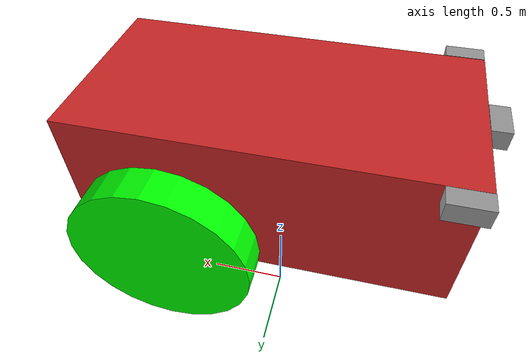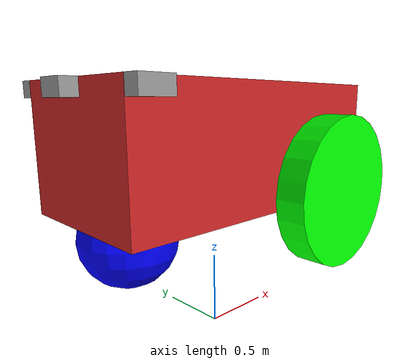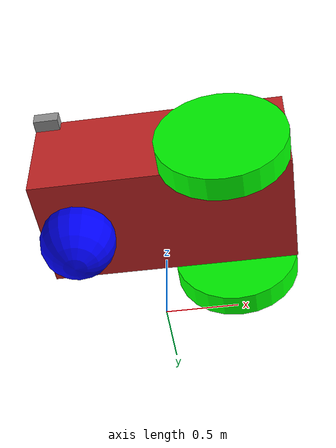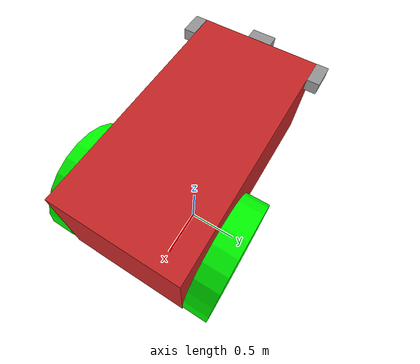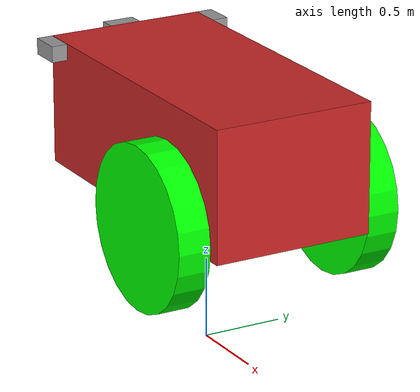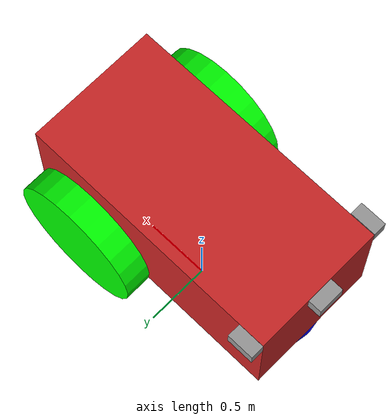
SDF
<?xml version='1.0'?>
<sdf version='1.6'>
  <model name='my_2wheel_bot'>
<!--Creating chassis for bot-->
    <link name='link_chassis'>
      <pose frame=''>0 0 1 0 -0 0</pose>
      <inertial>
        <mass>1</mass>
        <inertia>
          <ixx>0.166667</ixx>
          <ixy>0</ixy>
          <ixz>0</ixz>
          <iyy>0.166667</iyy>
          <iyz>0</iyz>
          <izz>0.166667</izz>
        </inertia>
        <pose frame=''>0 0 0 0 -0 0</pose>
      </inertial>
      <self_collide>0</self_collide>
      <kinematic>0</kinematic>
      <visual name='visual_chassis'>
        <geometry>
          <box>
            <size>2 1 0.8</size>
          </box>
        </geometry>
        <material>
          <script>
            <name>Gazebo/Red</name>
            <uri>file://media/materials/scripts/gazebo.material</uri>
          </script>
          <shader type='pixel'>
            <normal_map>__default__</normal_map>
          </shader>
          <ambient>1 0 0 1</ambient>
          <diffuse>1 0 0 1</diffuse>
          <specular>0.01 0.01 0.01 1</specular>
          <emissive>0 0 0 1</emissive>
        </material>
        <pose frame=''>0 0 0.3 0 -0 0</pose>
        <transparency>0</transparency>
        <cast_shadows>1</cast_shadows>
      </visual>
      <collision name='collision_chassis'>
        <laser_retro>0</laser_retro>
        <max_contacts>10</max_contacts>
        <pose frame=''>0 0 0.3 0 -0 0</pose>
        <geometry>
          <box>
            <size>2 1 0.8</size>
          </box>
        </geometry>
        <surface>
          <friction>
            <ode>
              <mu>1</mu>
              <mu2>1</mu2>
              <fdir1>0 0 0</fdir1>
              <slip1>0</slip1>
              <slip2>0</slip2>
            </ode>
            <torsional>
              <coefficient>1</coefficient>
              <patch_radius>0</patch_radius>
              <surface_radius>0</surface_radius>
              <use_patch_radius>1</use_patch_radius>
              <ode>
                <slip>0</slip>
              </ode>
            </torsional>
          </friction>
          <bounce>
            <restitution_coefficient>0</restitution_coefficient>
            <threshold>1e+06</threshold>
          </bounce>
          <contact>
            <collide_without_contact>0</collide_without_contact>
            <collide_without_contact_bitmask>1</collide_without_contact_bitmask>
            <collide_bitmask>1</collide_bitmask>
            <ode>
              <soft_cfm>0</soft_cfm>
              <soft_erp>0.2</soft_erp>
              <kp>1e+13</kp>
              <kd>1</kd>
              <max_vel>0.01</max_vel>
              <min_depth>0</min_depth>
            </ode>
            <bullet>
              <split_impulse>1</split_impulse>
              <split_impulse_penetration_threshold>-0.01</split_impulse_penetration_threshold>
              <soft_cfm>0</soft_cfm>
              <soft_erp>0.2</soft_erp>
              <kp>1e+13</kp>
              <kd>1</kd>
            </bullet>
          </contact>
        </surface>
      </collision>
<!--Adding castor wheel-->
      <visual name='visual_caster'>
        <pose frame=''>-0.7 0 -0.2 0 -0 0</pose>
        <geometry>
          <sphere>
            <radius>0.3</radius>
          </sphere>
        </geometry>
        <material>
          <lighting>1</lighting>
          <script>
            <uri>file://media/materials/scripts/gazebo.material</uri>
            <name>Gazebo/Grey</name>
          </script>
          <shader type='pixel'>
            <normal_map>__default__</normal_map>
          </shader>
          <ambient>0 0 1 1</ambient>
          <diffuse>0 0 1 1</diffuse>
          <specular>0.01 0.01 0.01 1</specular>
          <emissive>0 0 0 1</emissive>
        </material>
        <transparency>0</transparency>
        <cast_shadows>1</cast_shadows>
      </visual>
      <collision name='collision_caster'>
        <laser_retro>0</laser_retro>
        <max_contacts>10</max_contacts>
        <pose frame=''>-0.7 0 -0.2 0 -0 0</pose>
        <geometry>
          <sphere>
            <radius>0.3</radius>
          </sphere>
        </geometry>
        <surface>
          <friction>
            <ode>
              <mu>0</mu>
              <mu2>0</mu2>
              <fdir1>0 0 0</fdir1>
              <slip1>1</slip1>
              <slip2>1</slip2>
            </ode>
            <torsional>
              <coefficient>1</coefficient>
              <patch_radius>0</patch_radius>
              <surface_radius>0</surface_radius>
              <use_patch_radius>1</use_patch_radius>
              <ode>
                <slip>0</slip>
              </ode>
            </torsional>
          </friction>
          <bounce>
            <restitution_coefficient>0</restitution_coefficient>
            <threshold>1e+06</threshold>
          </bounce>
          <contact>
            <collide_without_contact>0</collide_without_contact>
            <collide_without_contact_bitmask>1</collide_without_contact_bitmask>
            <collide_bitmask>1</collide_bitmask>
            <ode>
              <soft_cfm>0</soft_cfm>
              <soft_erp>0.2</soft_erp>
              <kp>1e+13</kp>
              <kd>1</kd>
              <max_vel>0.01</max_vel>
              <min_depth>0</min_depth>
            </ode>
            <bullet>
              <split_impulse>1</split_impulse>
              <split_impulse_penetration_threshold>-0.01</split_impulse_penetration_threshold>
              <soft_cfm>0</soft_cfm>
              <soft_erp>0.2</soft_erp>
              <kp>1e+13</kp>
              <kd>1</kd>
            </bullet>
          </contact>
        </surface>
      </collision>
    </link>

<!--Adding right wheel-->
    <link name='link_rwheel'>
      <pose frame=''>0.5 0.600398 1 0 -0 0</pose>
      <inertial>
        <mass>1</mass>
        <inertia>
          <ixx>0.145833</ixx>
          <ixy>0</ixy>
          <ixz>0</ixz>
          <iyy>0.145833</iyy>
          <iyz>0</iyz>
          <izz>0.125</izz>
        </inertia>
        <pose frame=''>0 0 0 0 -0 0</pose>
      </inertial>
      <self_collide>0</self_collide>
      <kinematic>0</kinematic>
      <visual name='visual_rwheel'>
        <pose frame=''>0 0 0 1.57 -0 0</pose>
        <geometry>
          <cylinder>
            <radius>0.5</radius>
            <length>0.2</length>
          </cylinder>
        </geometry>
        <material>
          <lighting>1</lighting>
          <script>
            <uri>file://media/materials/scripts/gazebo.material</uri>
            <name>Gazebo/Grey</name>
          </script>
          <shader type='pixel'>
            <normal_map>__default__</normal_map>
          </shader>
          <ambient>0 1 0 1</ambient>
          <diffuse>0 1 0 1</diffuse>
          <specular>0.01 0.01 0.01 1</specular>
          <emissive>0 0 0 1</emissive>
        </material>
        <transparency>0</transparency>
        <cast_shadows>1</cast_shadows>
      </visual>
      <collision name='collision_rwheel'>
        <laser_retro>0</laser_retro>
        <max_contacts>10</max_contacts>
        <pose frame=''>0 0 0 1.57 -0 0</pose>
        <geometry>
          <cylinder>
            <radius>0.5</radius>
            <length>0.2</length>
          </cylinder>
        </geometry>
        <surface>
          <friction>
            <ode>
              <mu>1</mu>
              <mu2>1</mu2>
              <fdir1>0 0 0</fdir1>
              <slip1>0</slip1>
              <slip2>0</slip2>
            </ode>
            <torsional>
              <coefficient>1</coefficient>
              <patch_radius>0</patch_radius>
              <surface_radius>0</surface_radius>
              <use_patch_radius>1</use_patch_radius>
              <ode>
                <slip>0</slip>
              </ode>
            </torsional>
          </friction>
          <bounce>
            <restitution_coefficient>0</restitution_coefficient>
            <threshold>1e+06</threshold>
          </bounce>
          <contact>
            <collide_without_contact>0</collide_without_contact>
            <collide_without_contact_bitmask>1</collide_without_contact_bitmask>
            <collide_bitmask>1</collide_bitmask>
            <ode>
              <soft_cfm>0</soft_cfm>
              <soft_erp>0.2</soft_erp>
              <kp>1e+13</kp>
              <kd>1</kd>
              <max_vel>0.01</max_vel>
              <min_depth>0</min_depth>
            </ode>
            <bullet>
              <split_impulse>1</split_impulse>
              <split_impulse_penetration_threshold>-0.01</split_impulse_penetration_threshold>
              <soft_cfm>0</soft_cfm>
              <soft_erp>0.2</soft_erp>
              <kp>1e+13</kp>
              <kd>1</kd>
            </bullet>
          </contact>
        </surface>
      </collision>
    </link>

<!--Adding laser sensor at front-->
    <link name='sensor_front'>
      <pose frame=''>-1.05107 -0.001866 1.650131 0 -0 0</pose>
      <inertial>
        <mass>1</mass>
        <inertia>
          <ixx>0.166667</ixx>
          <ixy>0</ixy>
          <ixz>0</ixz>
          <iyy>0.166667</iyy>
          <iyz>0</iyz>
          <izz>0.166667</izz>
        </inertia>
        <pose frame=''>0 0 0 0 -0 0</pose>
      </inertial>
      <self_collide>0</self_collide>
      <kinematic>0</kinematic>
      <visual name='visual_sensor_front'>
        <pose frame=''>0 0 0 0 -0 0</pose>
        <geometry>
          <box>
            <size>0.1 0.2 0.1</size>
          </box>
        </geometry>
        <material>
          <lighting>1</lighting>
          <script>
            <uri>file://media/materials/scripts/gazebo.material</uri>
            <name>Gazebo/Grey</name>
          </script>
          <shader type='pixel'>
            <normal_map>__default__</normal_map>
          </shader>
          <ambient>0.3 0.3 0.3 1</ambient>
          <diffuse>0.7 0.7 0.7 1</diffuse>
          <specular>0.01 0.01 0.01 1</specular>
          <emissive>0 0 0 1</emissive>
        </material>
        <transparency>0</transparency>
        <cast_shadows>1</cast_shadows>
      </visual>
      <collision name='collision_sensor_front'>
        <laser_retro>0</laser_retro>
        <max_contacts>10</max_contacts>
        <pose frame=''>0 0 0 0 -0 0</pose>
        <geometry>
          <box>
            <size>0.1 0.2 0.1</size>
          </box>
        </geometry>
        <surface>
          <friction>
            <ode>
              <mu>1</mu>
              <mu2>1</mu2>
              <fdir1>0 0 0</fdir1>
              <slip1>0</slip1>
              <slip2>0</slip2>
            </ode>
            <torsional>
              <coefficient>1</coefficient>
              <patch_radius>0</patch_radius>
              <surface_radius>0</surface_radius>
              <use_patch_radius>1</use_patch_radius>
              <ode>
                <slip>0</slip>
              </ode>
            </torsional>
          </friction>
          <bounce>
            <restitution_coefficient>0</restitution_coefficient>
            <threshold>1e+06</threshold>
          </bounce>
          <contact>
            <collide_without_contact>0</collide_without_contact>
            <collide_without_contact_bitmask>1</collide_without_contact_bitmask>
            <collide_bitmask>1</collide_bitmask>
            <ode>
              <soft_cfm>0</soft_cfm>
              <soft_erp>0.2</soft_erp>
              <kp>1e+13</kp>
              <kd>1</kd>
              <max_vel>0.01</max_vel>
              <min_depth>0</min_depth>
            </ode>
            <bullet>
              <split_impulse>1</split_impulse>
              <split_impulse_penetration_threshold>-0.01</split_impulse_penetration_threshold>
              <soft_cfm>0</soft_cfm>
              <soft_erp>0.2</soft_erp>
              <kp>1e+13</kp>
              <kd>1</kd>
            </bullet>
          </contact>
        </surface>
      </collision>
<!--Adding sensor behaviour-->
      <sensor name='sensor_front' type='ray'>
        <pose frame=''>-0.1 0 0 0 0 3.14</pose>
        <visualize>1</visualize>
        <update_rate>30</update_rate>
        <ray>
          <scan>
            <horizontal>
              <samples>32</samples>
              <resolution>1</resolution>
              <min_angle>-0.5236</min_angle>
              <max_angle>0.5236</max_angle>
            </horizontal>
            <vertical>
              <samples>1</samples>
              <min_angle>0</min_angle>
              <max_angle>0</max_angle>
            </vertical>
          </scan>
          <range>
            <min>0.05</min>
            <max>70</max>
            <resolution>0.02</resolution>
          </range>
        </ray>
<!-- Attach the plugin to this model -->
        <plugin name="sensor_front_control" filename="libgazebo_ros_laser.so">
          <topicName>/sensor_front/laser/scan</topicName>
          <frameName>sensor_front</frameName>
        </plugin>
      </sensor>
    </link>

<!--Adding laser sensor at left-->
    <link name='sensor_left'>
      <pose frame=''>-0.899868 -0.553453 1.65019 0 -0 0</pose>
      <inertial>
        <mass>1</mass>
        <inertia>
          <ixx>0.166667</ixx>
          <ixy>0</ixy>
          <ixz>0</ixz>
          <iyy>0.166667</iyy>
          <iyz>0</iyz>
          <izz>0.166667</izz>
        </inertia>
        <pose frame=''>0 0 0 0 -0 0</pose>
      </inertial>
      <self_collide>0</self_collide>
      <kinematic>0</kinematic>
      <gravity>1</gravity>
      <visual name='visual_sensor_left'>
        <pose frame=''>0 0 0 0 -0 1.57</pose>
        <geometry>
          <box>
            <size>0.1 0.2 0.1</size>
          </box>
        </geometry>
        <material>
          <lighting>1</lighting>
          <script>
            <uri>file://media/materials/scripts/gazebo.material</uri>
            <name>Gazebo/Grey</name>
          </script>
          <shader type='pixel'>
            <normal_map>__default__</normal_map>
          </shader>
          <ambient>0.3 0.3 0.3 1</ambient>
          <diffuse>0.7 0.7 0.7 1</diffuse>
          <specular>0.01 0.01 0.01 1</specular>
          <emissive>0 0 0 1</emissive>
        </material>
        <transparency>0</transparency>
        <cast_shadows>1</cast_shadows>
      </visual>
      <collision name='collision_sensor_left'>
        <laser_retro>0</laser_retro>
        <max_contacts>10</max_contacts>
        <pose frame=''>0 0 0 0 -0 1.57</pose>
        <geometry>
          <box>
            <size>0.1 0.2 0.1</size>
          </box>
        </geometry>
        <surface>
          <friction>
            <ode>
              <mu>1</mu>
              <mu2>1</mu2>
              <fdir1>0 0 0</fdir1>
              <slip1>0</slip1>
              <slip2>0</slip2>
            </ode>
            <torsional>
              <coefficient>1</coefficient>
              <patch_radius>0</patch_radius>
              <surface_radius>0</surface_radius>
              <use_patch_radius>1</use_patch_radius>
              <ode>
                <slip>0</slip>
              </ode>
            </torsional>
          </friction>
          <bounce>
            <restitution_coefficient>0</restitution_coefficient>
            <threshold>1e+06</threshold>
          </bounce>
          <contact>
            <collide_without_contact>0</collide_without_contact>
            <collide_without_contact_bitmask>1</collide_without_contact_bitmask>
            <collide_bitmask>1</collide_bitmask>
            <ode>
              <soft_cfm>0</soft_cfm>
              <soft_erp>0.2</soft_erp>
              <kp>1e+13</kp>
              <kd>1</kd>
              <max_vel>0.01</max_vel>
              <min_depth>0</min_depth>
            </ode>
            <bullet>
              <split_impulse>1</split_impulse>
              <split_impulse_penetration_threshold>-0.01</split_impulse_penetration_threshold>
              <soft_cfm>0</soft_cfm>
              <soft_erp>0.2</soft_erp>
              <kp>1e+13</kp>
              <kd>1</kd>
            </bullet>
          </contact>
        </surface>
      </collision>
<!--Adding sensor behaviour-->
      <sensor name='sensor_left' type='ray'>
        <pose frame=''>-0.1 0 0 0 0 -1.57</pose>
        <visualize>1</visualize>
        <update_rate>30</update_rate>
        <ray>
          <scan>
            <horizontal>
              <samples>32</samples>
              <resolution>1</resolution>
              <min_angle>-0.5236</min_angle>
              <max_angle>0.5236</max_angle>
            </horizontal>
            <vertical>
              <samples>1</samples>
              <min_angle>0</min_angle>
              <max_angle>0</max_angle>
            </vertical>
          </scan>
          <range>
            <min>0.05</min>
            <max>70</max>
            <resolution>0.02</resolution>
          </range>
        </ray>
<!-- Attach the plugin to this model -->
        <plugin name="sensor_left_control" filename="libgazebo_ros_laser.so">
          <topicName>/sensor_left/laser/scan</topicName>
          <frameName>sensor_left</frameName>
        </plugin>
      </sensor>
    </link>

<!--Adding laser sensor at right-->
    <link name='sensor_right'>
      <pose frame=''>-0.901736 0.550433 1.650117 0 -0 0</pose>
      <inertial>
        <mass>1</mass>
        <inertia>
          <ixx>0.166667</ixx>
          <ixy>0</ixy>
          <ixz>0</ixz>
          <iyy>0.166667</iyy>
          <iyz>0</iyz>
          <izz>0.166667</izz>
        </inertia>
        <pose frame=''>0 0 0 0 -0 0</pose>
      </inertial>
      <self_collide>0</self_collide>
      <kinematic>0</kinematic>
      <visual name='visual_sensor_right'>
        <pose frame=''>0 0 0 0 -0 1.57</pose>
        <geometry>
          <box>
            <size>0.1 0.2 0.1</size>
          </box>
        </geometry>
        <material>
          <lighting>1</lighting>
          <script>
            <uri>file://media/materials/scripts/gazebo.material</uri>
            <name>Gazebo/Grey</name>
          </script>
          <shader type='pixel'>
            <normal_map>__default__</normal_map>
          </shader>
          <ambient>0.3 0.3 0.3 1</ambient>
          <diffuse>0.7 0.7 0.7 1</diffuse>
          <specular>0.01 0.01 0.01 1</specular>
          <emissive>0 0 0 1</emissive>
        </material>
        <transparency>0</transparency>
        <cast_shadows>1</cast_shadows>
      </visual>
      <collision name='collision_sensor_right'>
        <laser_retro>0</laser_retro>
        <max_contacts>10</max_contacts>
        <pose frame=''>0 0 0 0 -0 1.57</pose>
        <geometry>
          <box>
            <size>0.1 0.2 0.1</size>
          </box>
        </geometry>
        <surface>
          <friction>
            <ode>
              <mu>1</mu>
              <mu2>1</mu2>
              <fdir1>0 0 0</fdir1>
              <slip1>0</slip1>
              <slip2>0</slip2>
            </ode>
            <torsional>
              <coefficient>1</coefficient>
              <patch_radius>0</patch_radius>
              <surface_radius>0</surface_radius>
              <use_patch_radius>1</use_patch_radius>
              <ode>
                <slip>0</slip>
              </ode>
            </torsional>
          </friction>
          <bounce>
            <restitution_coefficient>0</restitution_coefficient>
            <threshold>1e+06</threshold>
          </bounce>
          <contact>
            <collide_without_contact>0</collide_without_contact>
            <collide_without_contact_bitmask>1</collide_without_contact_bitmask>
            <collide_bitmask>1</collide_bitmask>
            <ode>
              <soft_cfm>0</soft_cfm>
              <soft_erp>0.2</soft_erp>
              <kp>1e+13</kp>
              <kd>1</kd>
              <max_vel>0.01</max_vel>
              <min_depth>0</min_depth>
            </ode>
            <bullet>
              <split_impulse>1</split_impulse>
              <split_impulse_penetration_threshold>-0.01</split_impulse_penetration_threshold>
              <soft_cfm>0</soft_cfm>
              <soft_erp>0.2</soft_erp>
              <kp>1e+13</kp>
              <kd>1</kd>
            </bullet>
          </contact>
        </surface>
      </collision>
<!--Adding sensor behaviour-->
      <sensor name='sensor_right' type='ray'>
        <pose frame=''>-0.1 0 0 0 0 1.57</pose>
        <visualize>1</visualize>
        <update_rate>30</update_rate>
        <ray>
          <scan>
            <horizontal>
              <samples>32</samples>
              <resolution>1</resolution>
              <min_angle>-0.5236</min_angle>
              <max_angle>0.5236</max_angle>
            </horizontal>
            <vertical>
              <samples>1</samples>
              <min_angle>0</min_angle>
              <max_angle>0</max_angle>
            </vertical>
          </scan>
          <range>
            <min>0.05</min>
            <max>70</max>
            <resolution>0.02</resolution>
          </range>
        </ray>
<!-- Attach the plugin to this model -->
        <plugin name="sensor_right_control" filename="libgazebo_ros_laser.so">
          <topicName>/sensor_right/laser/scan</topicName>
          <frameName>sensor_right</frameName>
        </plugin>
      </sensor>
    </link>

<!--Adding left wheel-->
    <link name='link_lwheel'>
      <pose frame=''>0.5 -0.64 1 0 -0 0</pose>
      <inertial>
        <mass>1</mass>
        <inertia>
          <ixx>0.145833</ixx>
          <ixy>0</ixy>
          <ixz>0</ixz>
          <iyy>0.145833</iyy>
          <iyz>0</iyz>
          <izz>0.125</izz>
        </inertia>
        <pose frame=''>0 0 0 0 -0 0</pose>
      </inertial>
      <self_collide>0</self_collide>
      <kinematic>0</kinematic>
      <visual name='visual_lwheel'>
        <pose frame=''>0 0 0 1.57 -0 0</pose>
        <geometry>
          <cylinder>
            <radius>0.5</radius>
            <length>0.2</length>
          </cylinder>
        </geometry>
        <material>
          <lighting>1</lighting>
          <script>
            <uri>file://media/materials/scripts/gazebo.material</uri>
            <name>Gazebo/Grey</name>
          </script>
          <shader type='pixel'>
            <normal_map>__default__</normal_map>
          </shader>
          <ambient>0 1 0 1</ambient>
          <diffuse>0 1 0 1</diffuse>
          <specular>0.01 0.01 0.01 1</specular>
          <emissive>0 0 0 1</emissive>
        </material>
        <transparency>0</transparency>
        <cast_shadows>1</cast_shadows>
      </visual>
      <collision name='collision_lwheel'>
        <laser_retro>0</laser_retro>
        <max_contacts>10</max_contacts>
        <pose frame=''>0 0 0 1.57 -0 0</pose>
        <geometry>
          <cylinder>
            <radius>0.5</radius>
            <length>0.2</length>
          </cylinder>
        </geometry>
        <surface>
          <friction>
            <ode>
              <mu>1</mu>
              <mu2>1</mu2>
              <fdir1>0 0 0</fdir1>
              <slip1>0</slip1>
              <slip2>0</slip2>
            </ode>
            <torsional>
              <coefficient>1</coefficient>
              <patch_radius>0</patch_radius>
              <surface_radius>0</surface_radius>
              <use_patch_radius>1</use_patch_radius>
              <ode>
                <slip>0</slip>
              </ode>
            </torsional>
          </friction>
          <bounce>
            <restitution_coefficient>0</restitution_coefficient>
            <threshold>1e+06</threshold>
          </bounce>
          <contact>
            <collide_without_contact>0</collide_without_contact>
            <collide_without_contact_bitmask>1</collide_without_contact_bitmask>
            <collide_bitmask>1</collide_bitmask>
            <ode>
              <soft_cfm>0</soft_cfm>
              <soft_erp>0.2</soft_erp>
              <kp>1e+13</kp>
              <kd>1</kd>
              <max_vel>0.01</max_vel>
              <min_depth>0</min_depth>
            </ode>
            <bullet>
              <split_impulse>1</split_impulse>
              <split_impulse_penetration_threshold>-0.01</split_impulse_penetration_threshold>
              <soft_cfm>0</soft_cfm>
              <soft_erp>0.2</soft_erp>
              <kp>1e+13</kp>
              <kd>1</kd>
            </bullet>
          </contact>
        </surface>
      </collision>
    </link>

<!--fixed joint for chassis and front sensor-->
    <joint name='link_JOINT_0_0' type='fixed'>
      <parent>link_chassis</parent>
      <child>sensor_front</child>
      <pose frame=''>0 0 0 0 -0 0</pose>
      <physics>
        <ode>
          <limit>
            <cfm>0</cfm>
            <erp>0.2</erp>
          </limit>
          <suspension>
            <cfm>0</cfm>
            <erp>0.2</erp>
          </suspension>
        </ode>
      </physics>
    </joint>

<!--rotating joint for chassis and right wheel-->
    <joint name='link_JOINT_0' type='revolute'>
      <parent>link_chassis</parent>
      <child>link_rwheel</child>
      <pose frame=''>0 0 0 0 -0 0</pose>
      <axis>
        <xyz>0 -1 0</xyz>
        <use_parent_model_frame>0</use_parent_model_frame>
        <limit>
          <lower>-1.79769e+308</lower>
          <upper>1.79769e+308</upper>
          <effort>-1</effort>
          <velocity>-1</velocity>
        </limit>
        <dynamics>
          <spring_reference>0</spring_reference>
          <spring_stiffness>0</spring_stiffness>
          <damping>0</damping>
          <friction>0</friction>
        </dynamics>
      </axis>
      <physics>
        <ode>
          <limit>
            <cfm>0</cfm>
            <erp>0.2</erp>
          </limit>
          <suspension>
            <cfm>0</cfm>
            <erp>0.2</erp>
          </suspension>
        </ode>
      </physics>
    </joint>

<!--fixed joint for chassis and left sensor-->
    <joint name='link_JOINT_1_0' type='fixed'>
      <parent>link_chassis</parent>
      <child>sensor_left</child>
      <pose frame=''>0 0 0 0 -0 0</pose>
      <physics>
        <ode>
          <limit>
            <cfm>0</cfm>
            <erp>0.2</erp>
          </limit>
          <suspension>
            <cfm>0</cfm>
            <erp>0.2</erp>
          </suspension>
        </ode>
      </physics>
    </joint>

<!--rotating joint for chassis and left wheel-->
    <joint name='link_JOINT_1' type='revolute'>
      <parent>link_chassis</parent>
      <child>link_lwheel</child>
      <pose frame=''>0 0 0 0 -0 0</pose>
      <axis>
        <xyz>0 -1 0</xyz>
        <use_parent_model_frame>0</use_parent_model_frame>
        <limit>
          <lower>-1.79769e+308</lower>
          <upper>1.79769e+308</upper>
          <effort>-1</effort>
          <velocity>-1</velocity>
        </limit>
        <dynamics>
          <spring_reference>0</spring_reference>
          <spring_stiffness>0</spring_stiffness>
          <damping>0</damping>
          <friction>0</friction>
        </dynamics>
      </axis>
      <physics>
        <ode>
          <limit>
            <cfm>0</cfm>
            <erp>0.2</erp>
          </limit>
          <suspension>
            <cfm>0</cfm>
            <erp>0.2</erp>
          </suspension>
        </ode>
      </physics>
    </joint>

<!--fixed joint for chassis and right sensor-->
    <joint name='link_JOINT_2' type='fixed'>
      <parent>link_chassis</parent>
      <child>sensor_right</child>
      <pose frame=''>0 0 0 0 -0 0</pose>
      <physics>
        <ode>
          <limit>
            <cfm>0</cfm>
            <erp>0.2</erp>
          </limit>
          <suspension>
            <cfm>0</cfm>
            <erp>0.2</erp>
          </suspension>
        </ode>
      </physics>
    </joint>

<!--Adding differential drive plugin to this model-->
    <plugin name="diff_drive_control" filename="libgazebo_ros_diff_drive.so">
      <alwaysOn>true</alwaysOn>
      <updateRate>20</updateRate>
      <leftJoint>link_JOINT_1</leftJoint>
      <rightJoint>link_JOINT_0</rightJoint>
      <wheelSeparation>1.2</wheelSeparation>
      <wheelDiameter>0.5</wheelDiameter>
      <torque>20</torque>
      <commandTopic>cmd_vel</commandTopic>
      <odometryTopic>odom</odometryTopic>
      <odometryFrame>odom</odometryFrame>
      <robotBaseFrame>base_footprint</robotBaseFrame>
      <odometrySource>1</odometrySource>
      <publishWheelTF>true</publishWheelTF>
      <publishOdom>true</publishOdom>
      <publishWheelJointState>true</publishWheelJointState>
      <legacyMode>false</legacyMode>
    </plugin>

     <static>0</static>
     <allow_auto_disable>1</allow_auto_disable>
  </model>
</sdf>
